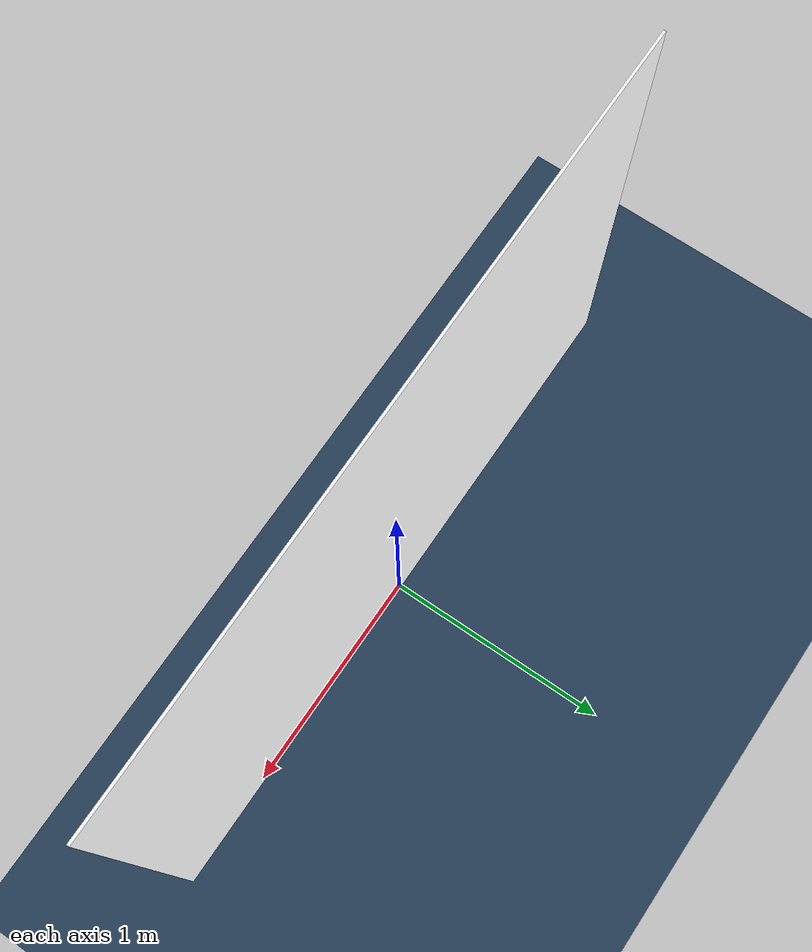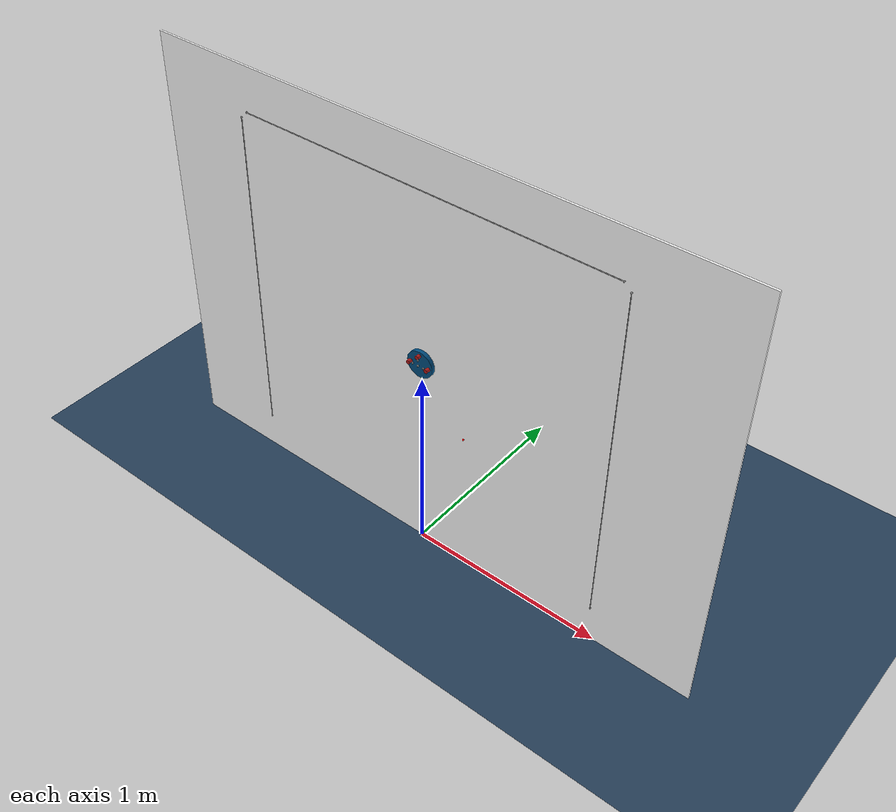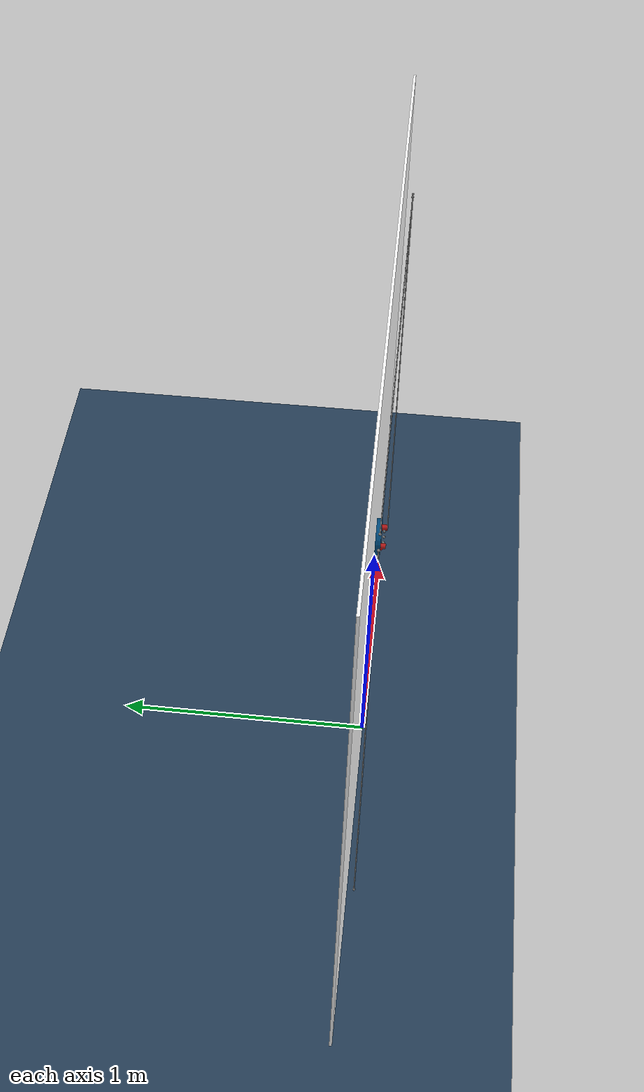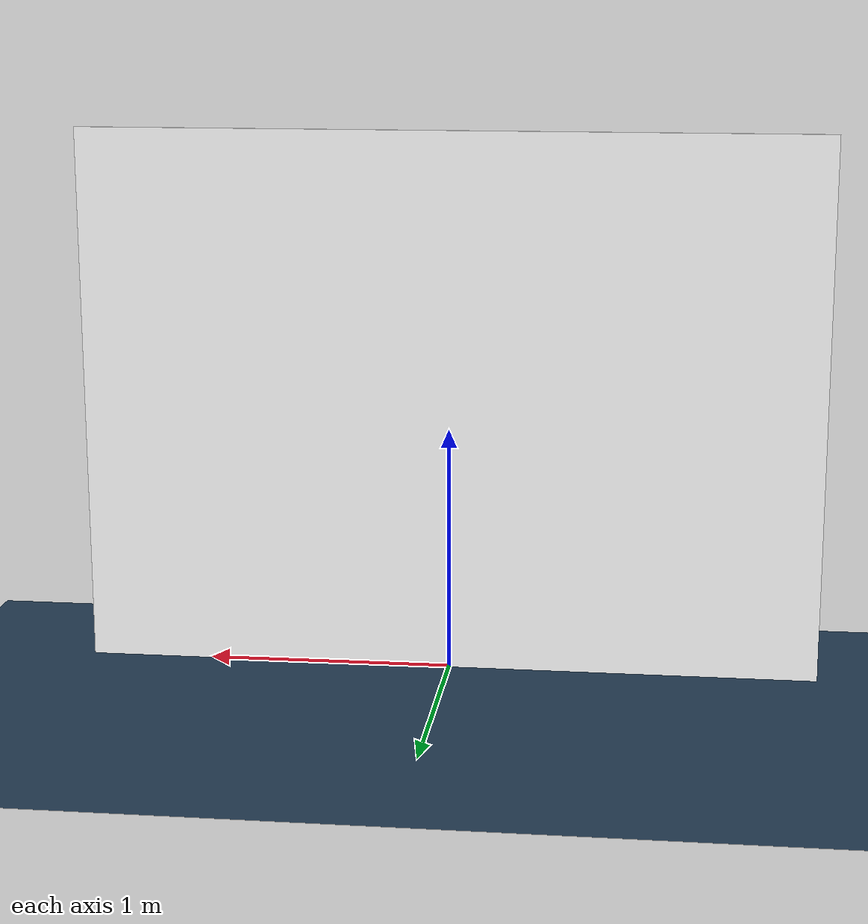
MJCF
<mujoco model="Kamal">
    <option gravity="0 0 -9.81"/>

    <visual>
        <headlight diffuse="0.6 0.6 0.6" ambient="0.3 0.3 0.3" specular="0 0 0"/>
        <rgba haze="0.15 0.25 0.35 1"/>
        <global azimuth="-120" elevation="-20"/>
    </visual>

    <asset>
        <texture type="skybox" builtin="gradient" rgb1="0.3 0.5 0.7" rgb2="0 0 0" width="512" height="3072"/>
        <texture type="2d" name="groundplane" builtin="checker" mark="edge" rgb1="0.2 0.3 0.4" rgb2="0.1 0.2 0.3"
        markrgb="0.8 0.8 0.8" width="300" height="300"/>
        <material name="groundplane" texture="groundplane" texuniform="true" texrepeat="5 5" reflectance="0.1"/>
    </asset>

    <worldbody>

        <light pos="0 0 1.5" dir="0 0 -1" directional="true"/>
        <geom name="floor" size="0 0 0.05" type="plane" material="groundplane"/>

        <body name="base">
            <geom name="board" type="box" size="1.5 0.005 1.1" pos="0 0.005 1.1" rgba="1 1 1 1"/>
            <site name="l1" pos="-0.985 -0.03 1.965"/>
            <site name="l2" pos="-0.985 -0.03 0.235"/>
            <site name="u1" pos="0.95 -0.03 2"/>
            <site name="u2" pos="-0.95 -0.03 2"/>
            <site name="r1" pos="0.985 -0.03 1.965"/>
            <site name="r2" pos="0.985 -0.03 0.235"/>

            <site name="dpoint" pos="0.25 -0.02 0.8" rgba="1 0 0 1"/>

        </body>

        <body name="end_effector" pos="0 -0.01 1.1">
            <joint name="slide_x" type="slide" axis="1 0 0"/>
            <joint name="slide_z" type="slide" axis="0 0 1"/>
            <geom type="cylinder" size="0.07 0.01" euler="90 0 0" rgba="0 0.3 0.5 1" mass="1"/>

                <geom name="p1" type="cylinder" size="0.01 0.01" pos="0 -0.02 0.05" euler="90 0 0" rgba="0.7 0.1 0.1 1" mass="0.5"/>
                    <site name="side1" pos="0 -0.02 0.03"/>

                <geom name="p2" type="cylinder" size="0.01 0.01" pos="0.05 -0.02 0" euler="90 0 0" rgba="0.7 0.1 0.1 1" mass="0.5"/>
                    <site name="side2" pos="0.03 -0.02 0"/>

                <geom name="p3" type="cylinder" size="0.01 0.01" pos="-0.05 -0.02 0" euler="90 0 0" rgba="0.7 0.1 0.1 1" mass="0.5"/>
                    <site name="side3" pos="-0.03 -0.02 0"/>
            <site name="end_pos" pos="0 -0.02 0"/>

        </body>

    </worldbody>

    <tendon>
        <spatial name="tendon1" width=".002" damping="0.1" stiffness="100">
            <site site="u1"/>
            <geom geom="p1" sidesite="side1"/>
            <site site="u2"/>
        </spatial>

        <spatial name="tendon2" width=".002" damping="0.1" stiffness="100">
            <site site="r1"/>
            <geom geom="p2" sidesite="side2"/>
            <site site="r2"/>
        </spatial>

        <spatial name="tendon3" width=".002" damping="0.1" stiffness="100">
            <site site="l1"/>
            <geom geom="p3" sidesite="side3"/>
            <site site="l2"/>
        </spatial>
    </tendon>

    <equality>
        <connect body1="end_effector" body2="base" anchor="0.95 0.03 2"/>
        <connect body1="end_effector" body2="base" anchor="0.985 0.03 1.965"/>
        <connect body1="end_effector" body2="base" anchor="-0.985 0.03 1.965"/>
    </equality>

    <actuator>

        <motor name="Upper Motor" tendon="tendon1" ctrlrange="-1 1" gear="300000"/>
        <motor name="Right Motor" tendon="tendon2" ctrlrange="-1 0" gear="300000"/>
        <motor name="Left Motor" tendon="tendon3" ctrlrange="-1 0" gear="300000"/>
    </actuator>

    <sensor>
        <tendonpos tendon="tendon1"/>
        <tendonpos tendon="tendon2"/>
        <tendonpos tendon="tendon3"/>
        <framepos objtype="site" objname="end_pos"/>
        <framelinvel objtype="site" objname="end_pos"/>
        <framelinacc objtype="site" objname="end_pos"/>
    </sensor>

</mujoco>
